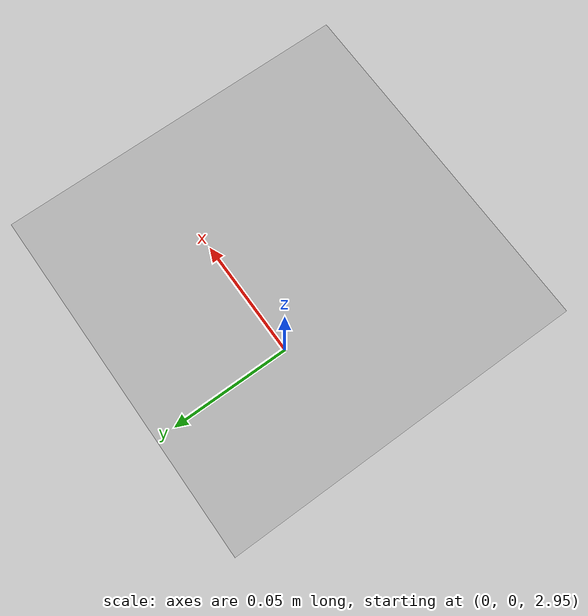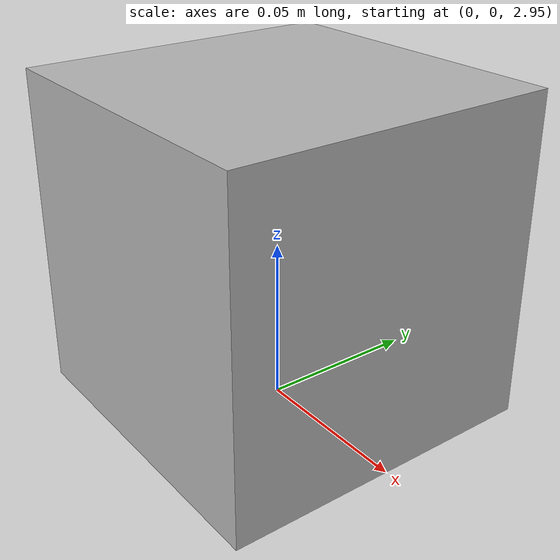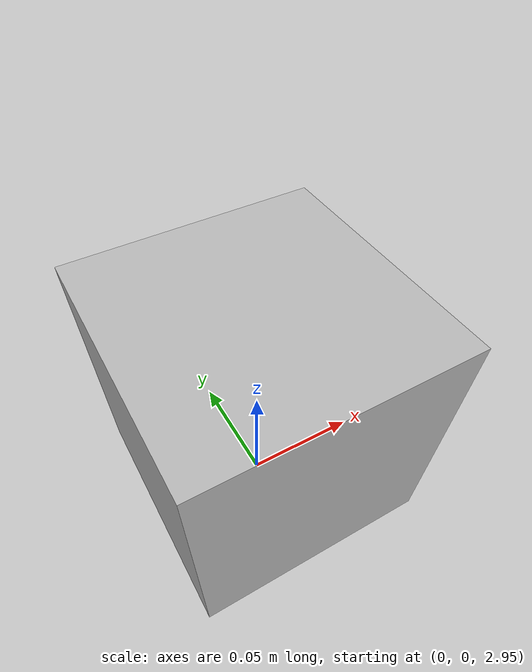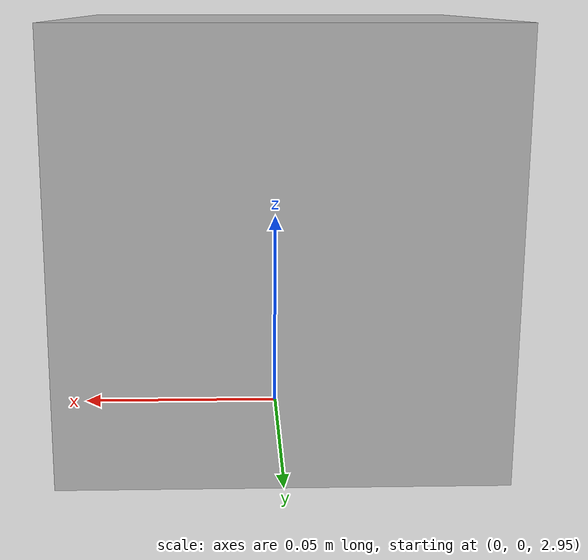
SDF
<?xml version="1.0" ?>
<sdf version="1.5">
  <world name="default">
    <!-- A global light source -->
    <include>
      <uri>model://sun</uri>
    </include>

    <model name="hw2_object">
      <pose>0 0 3 0 0 0</pose>
      <link name="base_link">
        <gravity>0</gravity>
        <inertial>
          <mass>1.0</mass>
          <inertia>
            <ixx>1.0</ixx>
            <ixy>0.0</ixy>
            <ixz>0.0</ixz>
            <iyy>1.0</iyy>
            <iyz>0.0</iyz>
            <izz>1.0</izz>
          </inertia>
        </inertial>
        <collision name="collision">
          <geometry>
            <box>
              <size>.1 .1 .1</size>
            </box>
          </geometry>
        </collision>
        <visual name="visual">
          <geometry>
            <box>
              <size>.1 .1 .1</size>
            </box>
          </geometry>
        </visual>
      </link>
    </model>

    <physics type="ode">
      <max_step_size>0.001</max_step_size>
      <real_time_factor>1</real_time_factor>
      <real_time_update_rate>1000</real_time_update_rate>
    </physics>

    <plugin name="ceng460_hw2_world_plugin" filename="libCeng460Hw2WorldPlugin.so" />

  </world>
</sdf>
